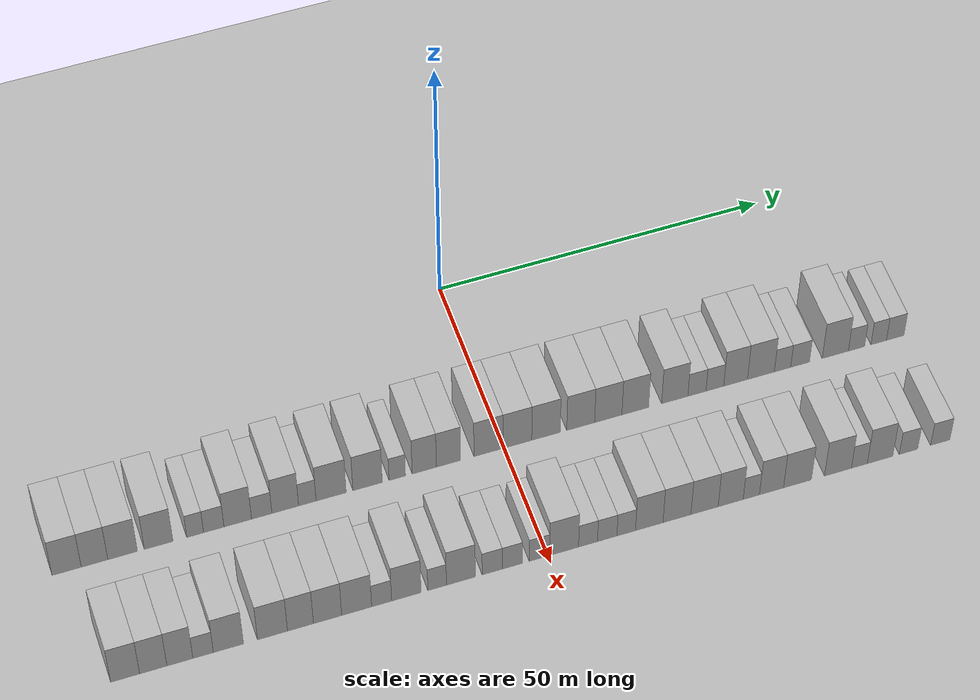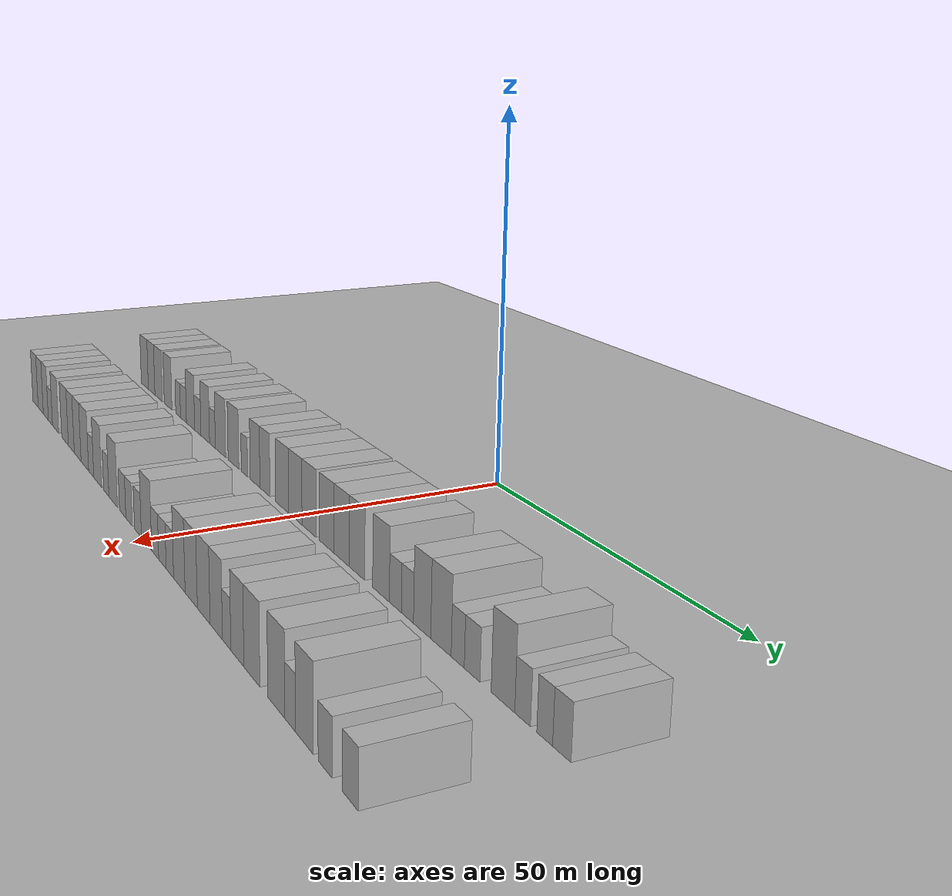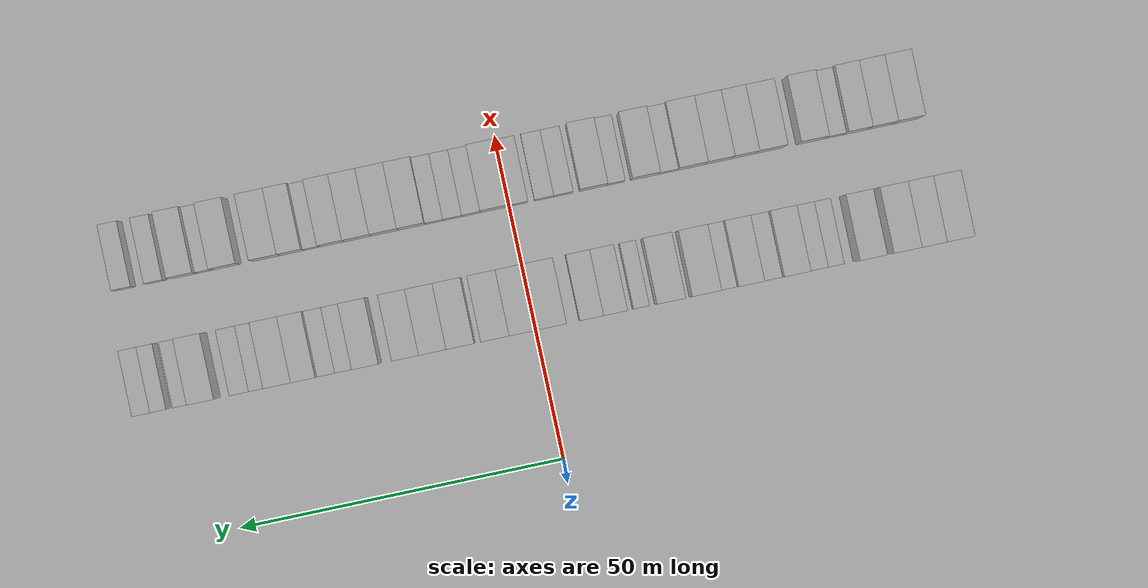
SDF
<sdf version="1.6">
 <world name="default">
  <include><name>ground_plane_1</name><uri>model://HANNAS_ground_plane</uri></include>
  <include>
   <name>ground_plane_2</name>
   <uri>model://HANNAS_ground_plane</uri>
   <pose>100 0 0  0 0 0</pose>
  </include>
  <model name="building_31">
   <static>1</static>
   <pose>25.0000 -64.3107 0 0.000000 0.000000 0.000000</pose>
   <link name="link">
    <pose>0 0 4.50 0 0 0</pose>
    <collision name="collision"><geometry><box><size>10.0000 4.1865 9.0000</size></box></geometry></collision>
    <visual name="visual">
     <cast_shadows>0</cast_shadows>
     <geometry><box><size>10.0000 4.1865 9.0000</size></box></geometry>
     <material>
      <script>
       <uri>model://HANNAS_wall/materials/scripts</uri>
       <uri>model://HANNAS_wall/materials/textures</uri>
       <name>vrc/HANNAS_wall</name>
      </script>
     </material>
    </visual>
   </link>
  </model>
  <model name="building_32">
   <static>1</static>
   <pose>25.0000 -60.3107 0 0.000000 0.000000 0.000000</pose>
   <link name="link">
    <pose>0 0 4.50 0 0 0</pose>
    <collision name="collision"><geometry><box><size>10.0000 3.8135 9.0000</size></box></geometry></collision>
    <visual name="visual">
     <cast_shadows>0</cast_shadows>
     <geometry><box><size>10.0000 3.8135 9.0000</size></box></geometry>
     <material>
      <script>
       <uri>model://HANNAS_wall/materials/scripts</uri>
       <uri>model://HANNAS_wall/materials/textures</uri>
       <name>vrc/HANNAS_wall</name>
      </script>
     </material>
    </visual>
   </link>
  </model>
  <model name="building_33">
   <static>1</static>
   <pose>25.0000 -56.2787 0 0.000000 0.000000 0.000000</pose>
   <link name="link">
    <pose>0 0 4.50 0 0 0</pose>
    <collision name="collision"><geometry><box><size>10.0000 4.2505 9.0000</size></box></geometry></collision>
    <visual name="visual">
     <cast_shadows>0</cast_shadows>
     <geometry><box><size>10.0000 4.2505 9.0000</size></box></geometry>
     <material>
      <script>
       <uri>model://HANNAS_wall/materials/scripts</uri>
       <uri>model://HANNAS_wall/materials/textures</uri>
       <name>vrc/HANNAS_wall</name>
      </script>
     </material>
    </visual>
   </link>
  </model>
  <model name="building_34">
   <static>1</static>
   <pose>25.0000 -51.0854 0 0.000000 0.000000 0.000000</pose>
   <link name="link">
    <pose>0 0 4.50 0 0 0</pose>
    <collision name="collision"><geometry><box><size>10.0000 4.1361 9.0000</size></box></geometry></collision>
    <visual name="visual">
     <cast_shadows>0</cast_shadows>
     <geometry><box><size>10.0000 4.1361 9.0000</size></box></geometry>
     <material>
      <script>
       <uri>model://HANNAS_wall/materials/scripts</uri>
       <uri>model://HANNAS_wall/materials/textures</uri>
       <name>vrc/HANNAS_wall</name>
      </script>
     </material>
    </visual>
   </link>
  </model>
  <model name="building_35">
   <static>1</static>
   <pose>25.0000 -45.7949 0 0.000000 0.000000 0.000000</pose>
   <link name="link">
    <pose>0 0 3.00 0 0 0</pose>
    <collision name="collision"><geometry><box><size>10.0000 2.4448 6.0000</size></box></geometry></collision>
    <visual name="visual">
     <cast_shadows>0</cast_shadows>
     <geometry><box><size>10.0000 2.4448 6.0000</size></box></geometry>
     <material>
      <script>
       <uri>model://HANNAS_wall/materials/scripts</uri>
       <uri>model://HANNAS_wall/materials/textures</uri>
       <name>vrc/HANNAS_wall</name>
      </script>
     </material>
    </visual>
   </link>
  </model>
  <model name="building_36">
   <static>1</static>
   <pose>25.0000 -43.0886 0 0.000000 0.000000 0.000000</pose>
   <link name="link">
    <pose>0 0 3.00 0 0 0</pose>
    <collision name="collision"><geometry><box><size>10.0000 2.9679 6.0000</size></box></geometry></collision>
    <visual name="visual">
     <cast_shadows>0</cast_shadows>
     <geometry><box><size>10.0000 2.9679 6.0000</size></box></geometry>
     <material>
      <script>
       <uri>model://HANNAS_wall/materials/scripts</uri>
       <uri>model://HANNAS_wall/materials/textures</uri>
       <name>vrc/HANNAS_wall</name>
      </script>
     </material>
    </visual>
   </link>
  </model>
  <model name="building_37">
   <static>1</static>
   <pose>25.0000 -39.5950 0 0.000000 0.000000 0.000000</pose>
   <link name="link">
    <pose>0 0 4.50 0 0 0</pose>
    <collision name="collision"><geometry><box><size>10.0000 4.0194 9.0000</size></box></geometry></collision>
    <visual name="visual">
     <cast_shadows>0</cast_shadows>
     <geometry><box><size>10.0000 4.0194 9.0000</size></box></geometry>
     <material>
      <script>
       <uri>model://HANNAS_wall/materials/scripts</uri>
       <uri>model://HANNAS_wall/materials/textures</uri>
       <name>vrc/HANNAS_wall</name>
      </script>
     </material>
    </visual>
   </link>
  </model>
  <model name="building_38">
   <static>1</static>
   <pose>25.0000 -36.0967 0 0.000000 0.000000 0.000000</pose>
   <link name="link">
    <pose>0 0 3.00 0 0 0</pose>
    <collision name="collision"><geometry><box><size>10.0000 2.9772 6.0000</size></box></geometry></collision>
    <visual name="visual">
     <cast_shadows>0</cast_shadows>
     <geometry><box><size>10.0000 2.9772 6.0000</size></box></geometry>
     <material>
      <script>
       <uri>model://HANNAS_wall/materials/scripts</uri>
       <uri>model://HANNAS_wall/materials/textures</uri>
       <name>vrc/HANNAS_wall</name>
      </script>
     </material>
    </visual>
   </link>
  </model>
  <model name="building_39">
   <static>1</static>
   <pose>25.0000 -32.6486 0 0.000000 0.000000 0.000000</pose>
   <link name="link">
    <pose>0 0 4.50 0 0 0</pose>
    <collision name="collision"><geometry><box><size>10.0000 3.9190 9.0000</size></box></geometry></collision>
    <visual name="visual">
     <cast_shadows>0</cast_shadows>
     <geometry><box><size>10.0000 3.9190 9.0000</size></box></geometry>
     <material>
      <script>
       <uri>model://HANNAS_wall/materials/scripts</uri>
       <uri>model://HANNAS_wall/materials/textures</uri>
       <name>vrc/HANNAS_wall</name>
      </script>
     </material>
    </visual>
   </link>
  </model>
  <model name="building_40">
   <static>1</static>
   <pose>25.0000 -29.4030 0 0.000000 0.000000 0.000000</pose>
   <link name="link">
    <pose>0 0 3.00 0 0 0</pose>
    <collision name="collision"><geometry><box><size>10.0000 2.5723 6.0000</size></box></geometry></collision>
    <visual name="visual">
     <cast_shadows>0</cast_shadows>
     <geometry><box><size>10.0000 2.5723 6.0000</size></box></geometry>
     <material>
      <script>
       <uri>model://HANNAS_wall/materials/scripts</uri>
       <uri>model://HANNAS_wall/materials/textures</uri>
       <name>vrc/HANNAS_wall</name>
      </script>
     </material>
    </visual>
   </link>
  </model>
  <model name="building_41">
   <static>1</static>
   <pose>25.0000 -25.9004 0 0.000000 0.000000 0.000000</pose>
   <link name="link">
    <pose>0 0 4.50 0 0 0</pose>
    <collision name="collision"><geometry><box><size>10.0000 4.4328 9.0000</size></box></geometry></collision>
    <visual name="visual">
     <cast_shadows>0</cast_shadows>
     <geometry><box><size>10.0000 4.4328 9.0000</size></box></geometry>
     <material>
      <script>
       <uri>model://HANNAS_wall/materials/scripts</uri>
       <uri>model://HANNAS_wall/materials/textures</uri>
       <name>vrc/HANNAS_wall</name>
      </script>
     </material>
    </visual>
   </link>
  </model>
  <model name="building_42">
   <static>1</static>
   <pose>25.0000 -20.5050 0 0.000000 0.000000 0.000000</pose>
   <link name="link">
    <pose>0 0 4.50 0 0 0</pose>
    <collision name="collision"><geometry><box><size>10.0000 4.3582 9.0000</size></box></geometry></collision>
    <visual name="visual">
     <cast_shadows>0</cast_shadows>
     <geometry><box><size>10.0000 4.3582 9.0000</size></box></geometry>
     <material>
      <script>
       <uri>model://HANNAS_wall/materials/scripts</uri>
       <uri>model://HANNAS_wall/materials/textures</uri>
       <name>vrc/HANNAS_wall</name>
      </script>
     </material>
    </visual>
   </link>
  </model>
  <model name="building_43">
   <static>1</static>
   <pose>25.0000 -16.1089 0 0.000000 0.000000 0.000000</pose>
   <link name="link">
    <pose>0 0 3.00 0 0 0</pose>
    <collision name="collision"><geometry><box><size>10.0000 2.4340 6.0000</size></box></geometry></collision>
    <visual name="visual">
     <cast_shadows>0</cast_shadows>
     <geometry><box><size>10.0000 2.4340 6.0000</size></box></geometry>
     <material>
      <script>
       <uri>model://HANNAS_wall/materials/scripts</uri>
       <uri>model://HANNAS_wall/materials/textures</uri>
       <name>vrc/HANNAS_wall</name>
      </script>
     </material>
    </visual>
   </link>
  </model>
  <model name="building_44">
   <static>1</static>
   <pose>25.0000 -12.0789 0 0.000000 0.000000 0.000000</pose>
   <link name="link">
    <pose>0 0 4.50 0 0 0</pose>
    <collision name="collision"><geometry><box><size>10.0000 3.6259 9.0000</size></box></geometry></collision>
    <visual name="visual">
     <cast_shadows>0</cast_shadows>
     <geometry><box><size>10.0000 3.6259 9.0000</size></box></geometry>
     <material>
      <script>
       <uri>model://HANNAS_wall/materials/scripts</uri>
       <uri>model://HANNAS_wall/materials/textures</uri>
       <name>vrc/HANNAS_wall</name>
      </script>
     </material>
    </visual>
   </link>
  </model>
  <model name="building_45">
   <static>1</static>
   <pose>25.0000 -8.4605 0 0.000000 0.000000 0.000000</pose>
   <link name="link">
    <pose>0 0 4.50 0 0 0</pose>
    <collision name="collision"><geometry><box><size>10.0000 3.6108 9.0000</size></box></geometry></collision>
    <visual name="visual">
     <cast_shadows>0</cast_shadows>
     <geometry><box><size>10.0000 3.6108 9.0000</size></box></geometry>
     <material>
      <script>
       <uri>model://HANNAS_wall/materials/scripts</uri>
       <uri>model://HANNAS_wall/materials/textures</uri>
       <name>vrc/HANNAS_wall</name>
      </script>
     </material>
    </visual>
   </link>
  </model>
  <model name="building_46">
   <static>1</static>
   <pose>25.0000 -2.4725 0 0.000000 0.000000 0.000000</pose>
   <link name="link">
    <pose>0 0 4.50 0 0 0</pose>
    <collision name="collision"><geometry><box><size>10.0000 4.3652 9.0000</size></box></geometry></collision>
    <visual name="visual">
     <cast_shadows>0</cast_shadows>
     <geometry><box><size>10.0000 4.3652 9.0000</size></box></geometry>
     <material>
      <script>
       <uri>model://HANNAS_wall/materials/scripts</uri>
       <uri>model://HANNAS_wall/materials/textures</uri>
       <name>vrc/HANNAS_wall</name>
      </script>
     </material>
    </visual>
   </link>
  </model>
  <model name="building_47">
   <static>1</static>
   <pose>25.0000 1.8716 0 0.000000 0.000000 0.000000</pose>
   <link name="link">
    <pose>0 0 4.50 0 0 0</pose>
    <collision name="collision"><geometry><box><size>10.0000 4.3229 9.0000</size></box></geometry></collision>
    <visual name="visual">
     <cast_shadows>0</cast_shadows>
     <geometry><box><size>10.0000 4.3229 9.0000</size></box></geometry>
     <material>
      <script>
       <uri>model://HANNAS_wall/materials/scripts</uri>
       <uri>model://HANNAS_wall/materials/textures</uri>
       <name>vrc/HANNAS_wall</name>
      </script>
     </material>
    </visual>
   </link>
  </model>
  <model name="building_48">
   <static>1</static>
   <pose>25.0000 6.1837 0 0.000000 0.000000 0.000000</pose>
   <link name="link">
    <pose>0 0 4.50 0 0 0</pose>
    <collision name="collision"><geometry><box><size>10.0000 4.3014 9.0000</size></box></geometry></collision>
    <visual name="visual">
     <cast_shadows>0</cast_shadows>
     <geometry><box><size>10.0000 4.3014 9.0000</size></box></geometry>
     <material>
      <script>
       <uri>model://HANNAS_wall/materials/scripts</uri>
       <uri>model://HANNAS_wall/materials/textures</uri>
       <name>vrc/HANNAS_wall</name>
      </script>
     </material>
    </visual>
   </link>
  </model>
  <model name="building_49">
   <static>1</static>
   <pose>25.0000 11.4500 0 0.000000 0.000000 0.000000</pose>
   <link name="link">
    <pose>0 0 4.50 0 0 0</pose>
    <collision name="collision"><geometry><box><size>10.0000 4.2313 9.0000</size></box></geometry></collision>
    <visual name="visual">
     <cast_shadows>0</cast_shadows>
     <geometry><box><size>10.0000 4.2313 9.0000</size></box></geometry>
     <material>
      <script>
       <uri>model://HANNAS_wall/materials/scripts</uri>
       <uri>model://HANNAS_wall/materials/textures</uri>
       <name>vrc/HANNAS_wall</name>
      </script>
     </material>
    </visual>
   </link>
  </model>
  <model name="building_50">
   <static>1</static>
   <pose>25.0000 15.6476 0 0.000000 0.000000 0.000000</pose>
   <link name="link">
    <pose>0 0 4.50 0 0 0</pose>
    <collision name="collision"><geometry><box><size>10.0000 4.1638 9.0000</size></box></geometry></collision>
    <visual name="visual">
     <cast_shadows>0</cast_shadows>
     <geometry><box><size>10.0000 4.1638 9.0000</size></box></geometry>
     <material>
      <script>
       <uri>model://HANNAS_wall/materials/scripts</uri>
       <uri>model://HANNAS_wall/materials/textures</uri>
       <name>vrc/HANNAS_wall</name>
      </script>
     </material>
    </visual>
   </link>
  </model>
  <model name="building_51">
   <static>1</static>
   <pose>25.0000 19.7668 0 0.000000 0.000000 0.000000</pose>
   <link name="link">
    <pose>0 0 4.50 0 0 0</pose>
    <collision name="collision"><geometry><box><size>10.0000 4.0746 9.0000</size></box></geometry></collision>
    <visual name="visual">
     <cast_shadows>0</cast_shadows>
     <geometry><box><size>10.0000 4.0746 9.0000</size></box></geometry>
     <material>
      <script>
       <uri>model://HANNAS_wall/materials/scripts</uri>
       <uri>model://HANNAS_wall/materials/textures</uri>
       <name>vrc/HANNAS_wall</name>
      </script>
     </material>
    </visual>
   </link>
  </model>
  <model name="building_52">
   <static>1</static>
   <pose>25.0000 25.8282 0 0.000000 0.000000 0.000000</pose>
   <link name="link">
    <pose>0 0 4.50 0 0 0</pose>
    <collision name="collision"><geometry><box><size>10.0000 4.0484 9.0000</size></box></geometry></collision>
    <visual name="visual">
     <cast_shadows>0</cast_shadows>
     <geometry><box><size>10.0000 4.0484 9.0000</size></box></geometry>
     <material>
      <script>
       <uri>model://HANNAS_wall/materials/scripts</uri>
       <uri>model://HANNAS_wall/materials/textures</uri>
       <name>vrc/HANNAS_wall</name>
      </script>
     </material>
    </visual>
   </link>
  </model>
  <model name="building_53">
   <static>1</static>
   <pose>25.0000 29.2500 0 0.000000 0.000000 0.000000</pose>
   <link name="link">
    <pose>0 0 3.00 0 0 0</pose>
    <collision name="collision"><geometry><box><size>10.0000 2.7951 6.0000</size></box></geometry></collision>
    <visual name="visual">
     <cast_shadows>0</cast_shadows>
     <geometry><box><size>10.0000 2.7951 6.0000</size></box></geometry>
     <material>
      <script>
       <uri>model://HANNAS_wall/materials/scripts</uri>
       <uri>model://HANNAS_wall/materials/textures</uri>
       <name>vrc/HANNAS_wall</name>
      </script>
     </material>
    </visual>
   </link>
  </model>
  <model name="building_54">
   <static>1</static>
   <pose>25.0000 32.0078 0 0.000000 0.000000 0.000000</pose>
   <link name="link">
    <pose>0 0 3.00 0 0 0</pose>
    <collision name="collision"><geometry><box><size>10.0000 2.7205 6.0000</size></box></geometry></collision>
    <visual name="visual">
     <cast_shadows>0</cast_shadows>
     <geometry><box><size>10.0000 2.7205 6.0000</size></box></geometry>
     <material>
      <script>
       <uri>model://HANNAS_wall/materials/scripts</uri>
       <uri>model://HANNAS_wall/materials/textures</uri>
       <name>vrc/HANNAS_wall</name>
      </script>
     </material>
    </visual>
   </link>
  </model>
  <model name="building_55">
   <static>1</static>
   <pose>25.0000 35.2162 0 0.000000 0.000000 0.000000</pose>
   <link name="link">
    <pose>0 0 4.50 0 0 0</pose>
    <collision name="collision"><geometry><box><size>10.0000 3.6962 9.0000</size></box></geometry></collision>
    <visual name="visual">
     <cast_shadows>0</cast_shadows>
     <geometry><box><size>10.0000 3.6962 9.0000</size></box></geometry>
     <material>
      <script>
       <uri>model://HANNAS_wall/materials/scripts</uri>
       <uri>model://HANNAS_wall/materials/textures</uri>
       <name>vrc/HANNAS_wall</name>
      </script>
     </material>
    </visual>
   </link>
  </model>
  <model name="building_56">
   <static>1</static>
   <pose>25.0000 39.1482 0 0.000000 0.000000 0.000000</pose>
   <link name="link">
    <pose>0 0 4.50 0 0 0</pose>
    <collision name="collision"><geometry><box><size>10.0000 4.1677 9.0000</size></box></geometry></collision>
    <visual name="visual">
     <cast_shadows>0</cast_shadows>
     <geometry><box><size>10.0000 4.1677 9.0000</size></box></geometry>
     <material>
      <script>
       <uri>model://HANNAS_wall/materials/scripts</uri>
       <uri>model://HANNAS_wall/materials/textures</uri>
       <name>vrc/HANNAS_wall</name>
      </script>
     </material>
    </visual>
   </link>
  </model>
  <model name="building_57">
   <static>1</static>
   <pose>25.0000 42.5010 0 0.000000 0.000000 0.000000</pose>
   <link name="link">
    <pose>0 0 3.00 0 0 0</pose>
    <collision name="collision"><geometry><box><size>10.0000 2.5380 6.0000</size></box></geometry></collision>
    <visual name="visual">
     <cast_shadows>0</cast_shadows>
     <geometry><box><size>10.0000 2.5380 6.0000</size></box></geometry>
     <material>
      <script>
       <uri>model://HANNAS_wall/materials/scripts</uri>
       <uri>model://HANNAS_wall/materials/textures</uri>
       <name>vrc/HANNAS_wall</name>
      </script>
     </material>
    </visual>
   </link>
  </model>
  <model name="building_58">
   <static>1</static>
   <pose>25.0000 45.2369 0 0.000000 0.000000 0.000000</pose>
   <link name="link">
    <pose>0 0 3.00 0 0 0</pose>
    <collision name="collision"><geometry><box><size>10.0000 2.9338 6.0000</size></box></geometry></collision>
    <visual name="visual">
     <cast_shadows>0</cast_shadows>
     <geometry><box><size>10.0000 2.9338 6.0000</size></box></geometry>
     <material>
      <script>
       <uri>model://HANNAS_wall/materials/scripts</uri>
       <uri>model://HANNAS_wall/materials/textures</uri>
       <name>vrc/HANNAS_wall</name>
      </script>
     </material>
    </visual>
   </link>
  </model>
  <model name="building_59">
   <static>1</static>
   <pose>25.0000 50.7413 0 0.000000 0.000000 0.000000</pose>
   <link name="link">
    <pose>0 0 4.50 0 0 0</pose>
    <collision name="collision"><geometry><box><size>10.0000 4.0751 9.0000</size></box></geometry></collision>
    <visual name="visual">
     <cast_shadows>0</cast_shadows>
     <geometry><box><size>10.0000 4.0751 9.0000</size></box></geometry>
     <material>
      <script>
       <uri>model://HANNAS_wall/materials/scripts</uri>
       <uri>model://HANNAS_wall/materials/textures</uri>
       <name>vrc/HANNAS_wall</name>
      </script>
     </material>
    </visual>
   </link>
  </model>
  <model name="building_60">
   <static>1</static>
   <pose>25.0000 54.0608 0 0.000000 0.000000 0.000000</pose>
   <link name="link">
    <pose>0 0 3.00 0 0 0</pose>
    <collision name="collision"><geometry><box><size>10.0000 2.5638 6.0000</size></box></geometry></collision>
    <visual name="visual">
     <cast_shadows>0</cast_shadows>
     <geometry><box><size>10.0000 2.5638 6.0000</size></box></geometry>
     <material>
      <script>
       <uri>model://HANNAS_wall/materials/scripts</uri>
       <uri>model://HANNAS_wall/materials/textures</uri>
       <name>vrc/HANNAS_wall</name>
      </script>
     </material>
    </visual>
   </link>
  </model>
  <model name="building_61">
   <static>1</static>
   <pose>25.0000 57.5639 0 0.000000 0.000000 0.000000</pose>
   <link name="link">
    <pose>0 0 3.00 0 0 0</pose>
    <collision name="collision"><geometry><box><size>10.0000 2.4423 6.0000</size></box></geometry></collision>
    <visual name="visual">
     <cast_shadows>0</cast_shadows>
     <geometry><box><size>10.0000 2.4423 6.0000</size></box></geometry>
     <material>
      <script>
       <uri>model://HANNAS_wall/materials/scripts</uri>
       <uri>model://HANNAS_wall/materials/textures</uri>
       <name>vrc/HANNAS_wall</name>
      </script>
     </material>
    </visual>
   </link>
  </model>
  <model name="building_62">
   <static>1</static>
   <pose>25.0000 60.1617 0 0.000000 0.000000 0.000000</pose>
   <link name="link">
    <pose>0 0 3.00 0 0 0</pose>
    <collision name="collision"><geometry><box><size>10.0000 2.7533 6.0000</size></box></geometry></collision>
    <visual name="visual">
     <cast_shadows>0</cast_shadows>
     <geometry><box><size>10.0000 2.7533 6.0000</size></box></geometry>
     <material>
      <script>
       <uri>model://HANNAS_wall/materials/scripts</uri>
       <uri>model://HANNAS_wall/materials/textures</uri>
       <name>vrc/HANNAS_wall</name>
      </script>
     </material>
    </visual>
   </link>
  </model>
  <model name="building_134">
   <static>1</static>
   <pose>44.0000 -60.9694 0 0.000000 0.000000 0.000000</pose>
   <link name="link">
    <pose>0 0 4.50 0 0 0</pose>
    <collision name="collision"><geometry><box><size>10.0000 4.0788 9.0000</size></box></geometry></collision>
    <visual name="visual">
     <cast_shadows>0</cast_shadows>
     <geometry><box><size>10.0000 4.0788 9.0000</size></box></geometry>
     <material>
      <script>
       <uri>model://HANNAS_wall/materials/scripts</uri>
       <uri>model://HANNAS_wall/materials/textures</uri>
       <name>vrc/HANNAS_wall</name>
      </script>
     </material>
    </visual>
   </link>
  </model>
  <model name="building_135">
   <static>1</static>
   <pose>44.0000 -57.0082 0 0.000000 0.000000 0.000000</pose>
   <link name="link">
    <pose>0 0 4.50 0 0 0</pose>
    <collision name="collision"><geometry><box><size>10.0000 3.8436 9.0000</size></box></geometry></collision>
    <visual name="visual">
     <cast_shadows>0</cast_shadows>
     <geometry><box><size>10.0000 3.8436 9.0000</size></box></geometry>
     <material>
      <script>
       <uri>model://HANNAS_wall/materials/scripts</uri>
       <uri>model://HANNAS_wall/materials/textures</uri>
       <name>vrc/HANNAS_wall</name>
      </script>
     </material>
    </visual>
   </link>
  </model>
  <model name="building_136">
   <static>1</static>
   <pose>44.0000 -53.2494 0 0.000000 0.000000 0.000000</pose>
   <link name="link">
    <pose>0 0 4.50 0 0 0</pose>
    <collision name="collision"><geometry><box><size>10.0000 3.6739 9.0000</size></box></geometry></collision>
    <visual name="visual">
     <cast_shadows>0</cast_shadows>
     <geometry><box><size>10.0000 3.6739 9.0000</size></box></geometry>
     <material>
      <script>
       <uri>model://HANNAS_wall/materials/scripts</uri>
       <uri>model://HANNAS_wall/materials/textures</uri>
       <name>vrc/HANNAS_wall</name>
      </script>
     </material>
    </visual>
   </link>
  </model>
  <model name="building_137">
   <static>1</static>
   <pose>44.0000 -49.9611 0 0.000000 0.000000 0.000000</pose>
   <link name="link">
    <pose>0 0 3.00 0 0 0</pose>
    <collision name="collision"><geometry><box><size>10.0000 2.9028 6.0000</size></box></geometry></collision>
    <visual name="visual">
     <cast_shadows>0</cast_shadows>
     <geometry><box><size>10.0000 2.9028 6.0000</size></box></geometry>
     <material>
      <script>
       <uri>model://HANNAS_wall/materials/scripts</uri>
       <uri>model://HANNAS_wall/materials/textures</uri>
       <name>vrc/HANNAS_wall</name>
      </script>
     </material>
    </visual>
   </link>
  </model>
  <model name="building_138">
   <static>1</static>
   <pose>44.0000 -46.3736 0 0.000000 0.000000 0.000000</pose>
   <link name="link">
    <pose>0 0 4.50 0 0 0</pose>
    <collision name="collision"><geometry><box><size>10.0000 4.2721 9.0000</size></box></geometry></collision>
    <visual name="visual">
     <cast_shadows>0</cast_shadows>
     <geometry><box><size>10.0000 4.2721 9.0000</size></box></geometry>
     <material>
      <script>
       <uri>model://HANNAS_wall/materials/scripts</uri>
       <uri>model://HANNAS_wall/materials/textures</uri>
       <name>vrc/HANNAS_wall</name>
      </script>
     </material>
    </visual>
   </link>
  </model>
  <model name="building_139">
   <static>1</static>
   <pose>44.0000 -40.0922 0 0.000000 0.000000 0.000000</pose>
   <link name="link">
    <pose>0 0 4.50 0 0 0</pose>
    <collision name="collision"><geometry><box><size>10.0000 4.2907 9.0000</size></box></geometry></collision>
    <visual name="visual">
     <cast_shadows>0</cast_shadows>
     <geometry><box><size>10.0000 4.2907 9.0000</size></box></geometry>
     <material>
      <script>
       <uri>model://HANNAS_wall/materials/scripts</uri>
       <uri>model://HANNAS_wall/materials/textures</uri>
       <name>vrc/HANNAS_wall</name>
      </script>
     </material>
    </visual>
   </link>
  </model>
  <model name="building_140">
   <static>1</static>
   <pose>44.0000 -36.0875 0 0.000000 0.000000 0.000000</pose>
   <link name="link">
    <pose>0 0 4.50 0 0 0</pose>
    <collision name="collision"><geometry><box><size>10.0000 3.7188 9.0000</size></box></geometry></collision>
    <visual name="visual">
     <cast_shadows>0</cast_shadows>
     <geometry><box><size>10.0000 3.7188 9.0000</size></box></geometry>
     <material>
      <script>
       <uri>model://HANNAS_wall/materials/scripts</uri>
       <uri>model://HANNAS_wall/materials/textures</uri>
       <name>vrc/HANNAS_wall</name>
      </script>
     </material>
    </visual>
   </link>
  </model>
  <model name="building_141">
   <static>1</static>
   <pose>44.0000 -32.2013 0 0.000000 0.000000 0.000000</pose>
   <link name="link">
    <pose>0 0 4.50 0 0 0</pose>
    <collision name="collision"><geometry><box><size>10.0000 4.0536 9.0000</size></box></geometry></collision>
    <visual name="visual">
     <cast_shadows>0</cast_shadows>
     <geometry><box><size>10.0000 4.0536 9.0000</size></box></geometry>
     <material>
      <script>
       <uri>model://HANNAS_wall/materials/scripts</uri>
       <uri>model://HANNAS_wall/materials/textures</uri>
       <name>vrc/HANNAS_wall</name>
      </script>
     </material>
    </visual>
   </link>
  </model>
  <model name="building_142">
   <static>1</static>
   <pose>44.0000 -28.0070 0 0.000000 0.000000 0.000000</pose>
   <link name="link">
    <pose>0 0 4.50 0 0 0</pose>
    <collision name="collision"><geometry><box><size>10.0000 4.3352 9.0000</size></box></geometry></collision>
    <visual name="visual">
     <cast_shadows>0</cast_shadows>
     <geometry><box><size>10.0000 4.3352 9.0000</size></box></geometry>
     <material>
      <script>
       <uri>model://HANNAS_wall/materials/scripts</uri>
       <uri>model://HANNAS_wall/materials/textures</uri>
       <name>vrc/HANNAS_wall</name>
      </script>
     </material>
    </visual>
   </link>
  </model>
  <model name="building_143">
   <static>1</static>
   <pose>44.0000 -24.4010 0 0.000000 0.000000 0.000000</pose>
   <link name="link">
    <pose>0 0 3.00 0 0 0</pose>
    <collision name="collision"><geometry><box><size>10.0000 2.8768 6.0000</size></box></geometry></collision>
    <visual name="visual">
     <cast_shadows>0</cast_shadows>
     <geometry><box><size>10.0000 2.8768 6.0000</size></box></geometry>
     <material>
      <script>
       <uri>model://HANNAS_wall/materials/scripts</uri>
       <uri>model://HANNAS_wall/materials/textures</uri>
       <name>vrc/HANNAS_wall</name>
      </script>
     </material>
    </visual>
   </link>
  </model>
  <model name="building_144">
   <static>1</static>
   <pose>44.0000 -20.8320 0 0.000000 0.000000 0.000000</pose>
   <link name="link">
    <pose>0 0 4.50 0 0 0</pose>
    <collision name="collision"><geometry><box><size>10.0000 4.2611 9.0000</size></box></geometry></collision>
    <visual name="visual">
     <cast_shadows>0</cast_shadows>
     <geometry><box><size>10.0000 4.2611 9.0000</size></box></geometry>
     <material>
      <script>
       <uri>model://HANNAS_wall/materials/scripts</uri>
       <uri>model://HANNAS_wall/materials/textures</uri>
       <name>vrc/HANNAS_wall</name>
      </script>
     </material>
    </visual>
   </link>
  </model>
  <model name="building_145">
   <static>1</static>
   <pose>44.0000 -16.3486 0 0.000000 0.000000 0.000000</pose>
   <link name="link">
    <pose>0 0 3.00 0 0 0</pose>
    <collision name="collision"><geometry><box><size>10.0000 2.7057 6.0000</size></box></geometry></collision>
    <visual name="visual">
     <cast_shadows>0</cast_shadows>
     <geometry><box><size>10.0000 2.7057 6.0000</size></box></geometry>
     <material>
      <script>
       <uri>model://HANNAS_wall/materials/scripts</uri>
       <uri>model://HANNAS_wall/materials/textures</uri>
       <name>vrc/HANNAS_wall</name>
      </script>
     </material>
    </visual>
   </link>
  </model>
  <model name="building_146">
   <static>1</static>
   <pose>44.0000 -12.8896 0 0.000000 0.000000 0.000000</pose>
   <link name="link">
    <pose>0 0 4.50 0 0 0</pose>
    <collision name="collision"><geometry><box><size>10.0000 4.2124 9.0000</size></box></geometry></collision>
    <visual name="visual">
     <cast_shadows>0</cast_shadows>
     <geometry><box><size>10.0000 4.2124 9.0000</size></box></geometry>
     <material>
      <script>
       <uri>model://HANNAS_wall/materials/scripts</uri>
       <uri>model://HANNAS_wall/materials/textures</uri>
       <name>vrc/HANNAS_wall</name>
      </script>
     </material>
    </visual>
   </link>
  </model>
  <model name="building_147">
   <static>1</static>
   <pose>44.0000 -8.3061 0 0.000000 0.000000 0.000000</pose>
   <link name="link">
    <pose>0 0 3.00 0 0 0</pose>
    <collision name="collision"><geometry><box><size>10.0000 2.9546 6.0000</size></box></geometry></collision>
    <visual name="visual">
     <cast_shadows>0</cast_shadows>
     <geometry><box><size>10.0000 2.9546 6.0000</size></box></geometry>
     <material>
      <script>
       <uri>model://HANNAS_wall/materials/scripts</uri>
       <uri>model://HANNAS_wall/materials/textures</uri>
       <name>vrc/HANNAS_wall</name>
      </script>
     </material>
    </visual>
   </link>
  </model>
  <model name="building_148">
   <static>1</static>
   <pose>44.0000 -5.3500 0 0.000000 0.000000 0.000000</pose>
   <link name="link">
    <pose>0 0 3.00 0 0 0</pose>
    <collision name="collision"><geometry><box><size>10.0000 2.9575 6.0000</size></box></geometry></collision>
    <visual name="visual">
     <cast_shadows>0</cast_shadows>
     <geometry><box><size>10.0000 2.9575 6.0000</size></box></geometry>
     <material>
      <script>
       <uri>model://HANNAS_wall/materials/scripts</uri>
       <uri>model://HANNAS_wall/materials/textures</uri>
       <name>vrc/HANNAS_wall</name>
      </script>
     </material>
    </visual>
   </link>
  </model>
  <model name="building_149">
   <static>1</static>
   <pose>44.0000 -1.3785 0 0.000000 0.000000 0.000000</pose>
   <link name="link">
    <pose>0 0 3.00 0 0 0</pose>
    <collision name="collision"><geometry><box><size>10.0000 2.9857 6.0000</size></box></geometry></collision>
    <visual name="visual">
     <cast_shadows>0</cast_shadows>
     <geometry><box><size>10.0000 2.9857 6.0000</size></box></geometry>
     <material>
      <script>
       <uri>model://HANNAS_wall/materials/scripts</uri>
       <uri>model://HANNAS_wall/materials/textures</uri>
       <name>vrc/HANNAS_wall</name>
      </script>
     </material>
    </visual>
   </link>
  </model>
  <model name="building_150">
   <static>1</static>
   <pose>44.0000 2.2615 0 0.000000 0.000000 0.000000</pose>
   <link name="link">
    <pose>0 0 4.50 0 0 0</pose>
    <collision name="collision"><geometry><box><size>10.0000 4.2942 9.0000</size></box></geometry></collision>
    <visual name="visual">
     <cast_shadows>0</cast_shadows>
     <geometry><box><size>10.0000 4.2942 9.0000</size></box></geometry>
     <material>
      <script>
       <uri>model://HANNAS_wall/materials/scripts</uri>
       <uri>model://HANNAS_wall/materials/textures</uri>
       <name>vrc/HANNAS_wall</name>
      </script>
     </material>
    </visual>
   </link>
  </model>
  <model name="building_151">
   <static>1</static>
   <pose>44.0000 5.8184 0 0.000000 0.000000 0.000000</pose>
   <link name="link">
    <pose>0 0 3.00 0 0 0</pose>
    <collision name="collision"><geometry><box><size>10.0000 2.8196 6.0000</size></box></geometry></collision>
    <visual name="visual">
     <cast_shadows>0</cast_shadows>
     <geometry><box><size>10.0000 2.8196 6.0000</size></box></geometry>
     <material>
      <script>
       <uri>model://HANNAS_wall/materials/scripts</uri>
       <uri>model://HANNAS_wall/materials/textures</uri>
       <name>vrc/HANNAS_wall</name>
      </script>
     </material>
    </visual>
   </link>
  </model>
  <model name="building_152">
   <static>1</static>
   <pose>44.0000 8.6654 0 0.000000 0.000000 0.000000</pose>
   <link name="link">
    <pose>0 0 3.00 0 0 0</pose>
    <collision name="collision"><geometry><box><size>10.0000 2.8744 6.0000</size></box></geometry></collision>
    <visual name="visual">
     <cast_shadows>0</cast_shadows>
     <geometry><box><size>10.0000 2.8744 6.0000</size></box></geometry>
     <material>
      <script>
       <uri>model://HANNAS_wall/materials/scripts</uri>
       <uri>model://HANNAS_wall/materials/textures</uri>
       <name>vrc/HANNAS_wall</name>
      </script>
     </material>
    </visual>
   </link>
  </model>
  <model name="building_153">
   <static>1</static>
   <pose>44.0000 11.4884 0 0.000000 0.000000 0.000000</pose>
   <link name="link">
    <pose>0 0 3.00 0 0 0</pose>
    <collision name="collision"><geometry><box><size>10.0000 2.7717 6.0000</size></box></geometry></collision>
    <visual name="visual">
     <cast_shadows>0</cast_shadows>
     <geometry><box><size>10.0000 2.7717 6.0000</size></box></geometry>
     <material>
      <script>
       <uri>model://HANNAS_wall/materials/scripts</uri>
       <uri>model://HANNAS_wall/materials/textures</uri>
       <name>vrc/HANNAS_wall</name>
      </script>
     </material>
    </visual>
   </link>
  </model>
  <model name="building_154">
   <static>1</static>
   <pose>44.0000 14.9326 0 0.000000 0.000000 0.000000</pose>
   <link name="link">
    <pose>0 0 4.50 0 0 0</pose>
    <collision name="collision"><geometry><box><size>10.0000 4.1168 9.0000</size></box></geometry></collision>
    <visual name="visual">
     <cast_shadows>0</cast_shadows>
     <geometry><box><size>10.0000 4.1168 9.0000</size></box></geometry>
     <material>
      <script>
       <uri>model://HANNAS_wall/materials/scripts</uri>
       <uri>model://HANNAS_wall/materials/textures</uri>
       <name>vrc/HANNAS_wall</name>
      </script>
     </material>
    </visual>
   </link>
  </model>
  <model name="building_155">
   <static>1</static>
   <pose>44.0000 19.0805 0 0.000000 0.000000 0.000000</pose>
   <link name="link">
    <pose>0 0 4.50 0 0 0</pose>
    <collision name="collision"><geometry><box><size>10.0000 4.1790 9.0000</size></box></geometry></collision>
    <visual name="visual">
     <cast_shadows>0</cast_shadows>
     <geometry><box><size>10.0000 4.1790 9.0000</size></box></geometry>
     <material>
      <script>
       <uri>model://HANNAS_wall/materials/scripts</uri>
       <uri>model://HANNAS_wall/materials/textures</uri>
       <name>vrc/HANNAS_wall</name>
      </script>
     </material>
    </visual>
   </link>
  </model>
  <model name="building_156">
   <static>1</static>
   <pose>44.0000 23.2213 0 0.000000 0.000000 0.000000</pose>
   <link name="link">
    <pose>0 0 4.50 0 0 0</pose>
    <collision name="collision"><geometry><box><size>10.0000 4.1025 9.0000</size></box></geometry></collision>
    <visual name="visual">
     <cast_shadows>0</cast_shadows>
     <geometry><box><size>10.0000 4.1025 9.0000</size></box></geometry>
     <material>
      <script>
       <uri>model://HANNAS_wall/materials/scripts</uri>
       <uri>model://HANNAS_wall/materials/textures</uri>
       <name>vrc/HANNAS_wall</name>
      </script>
     </material>
    </visual>
   </link>
  </model>
  <model name="building_157">
   <static>1</static>
   <pose>44.0000 27.1616 0 0.000000 0.000000 0.000000</pose>
   <link name="link">
    <pose>0 0 4.50 0 0 0</pose>
    <collision name="collision"><geometry><box><size>10.0000 3.7783 9.0000</size></box></geometry></collision>
    <visual name="visual">
     <cast_shadows>0</cast_shadows>
     <geometry><box><size>10.0000 3.7783 9.0000</size></box></geometry>
     <material>
      <script>
       <uri>model://HANNAS_wall/materials/scripts</uri>
       <uri>model://HANNAS_wall/materials/textures</uri>
       <name>vrc/HANNAS_wall</name>
      </script>
     </material>
    </visual>
   </link>
  </model>
  <model name="building_158">
   <static>1</static>
   <pose>44.0000 30.2776 0 0.000000 0.000000 0.000000</pose>
   <link name="link">
    <pose>0 0 3.00 0 0 0</pose>
    <collision name="collision"><geometry><box><size>10.0000 2.4537 6.0000</size></box></geometry></collision>
    <visual name="visual">
     <cast_shadows>0</cast_shadows>
     <geometry><box><size>10.0000 2.4537 6.0000</size></box></geometry>
     <material>
      <script>
       <uri>model://HANNAS_wall/materials/scripts</uri>
       <uri>model://HANNAS_wall/materials/textures</uri>
       <name>vrc/HANNAS_wall</name>
      </script>
     </material>
    </visual>
   </link>
  </model>
  <model name="building_159">
   <static>1</static>
   <pose>44.0000 33.3311 0 0.000000 0.000000 0.000000</pose>
   <link name="link">
    <pose>0 0 4.50 0 0 0</pose>
    <collision name="collision"><geometry><box><size>10.0000 3.6533 9.0000</size></box></geometry></collision>
    <visual name="visual">
     <cast_shadows>0</cast_shadows>
     <geometry><box><size>10.0000 3.6533 9.0000</size></box></geometry>
     <material>
      <script>
       <uri>model://HANNAS_wall/materials/scripts</uri>
       <uri>model://HANNAS_wall/materials/textures</uri>
       <name>vrc/HANNAS_wall</name>
      </script>
     </material>
    </visual>
   </link>
  </model>
  <model name="building_160">
   <static>1</static>
   <pose>44.0000 37.2758 0 0.000000 0.000000 0.000000</pose>
   <link name="link">
    <pose>0 0 4.50 0 0 0</pose>
    <collision name="collision"><geometry><box><size>10.0000 4.2360 9.0000</size></box></geometry></collision>
    <visual name="visual">
     <cast_shadows>0</cast_shadows>
     <geometry><box><size>10.0000 4.2360 9.0000</size></box></geometry>
     <material>
      <script>
       <uri>model://HANNAS_wall/materials/scripts</uri>
       <uri>model://HANNAS_wall/materials/textures</uri>
       <name>vrc/HANNAS_wall</name>
      </script>
     </material>
    </visual>
   </link>
  </model>
  <model name="building_161">
   <static>1</static>
   <pose>44.0000 43.4518 0 0.000000 0.000000 0.000000</pose>
   <link name="link">
    <pose>0 0 4.50 0 0 0</pose>
    <collision name="collision"><geometry><box><size>10.0000 4.1161 9.0000</size></box></geometry></collision>
    <visual name="visual">
     <cast_shadows>0</cast_shadows>
     <geometry><box><size>10.0000 4.1161 9.0000</size></box></geometry>
     <material>
      <script>
       <uri>model://HANNAS_wall/materials/scripts</uri>
       <uri>model://HANNAS_wall/materials/textures</uri>
       <name>vrc/HANNAS_wall</name>
      </script>
     </material>
    </visual>
   </link>
  </model>
  <model name="building_162">
   <static>1</static>
   <pose>44.0000 46.7225 0 0.000000 0.000000 0.000000</pose>
   <link name="link">
    <pose>0 0 3.00 0 0 0</pose>
    <collision name="collision"><geometry><box><size>10.0000 2.4254 6.0000</size></box></geometry></collision>
    <visual name="visual">
     <cast_shadows>0</cast_shadows>
     <geometry><box><size>10.0000 2.4254 6.0000</size></box></geometry>
     <material>
      <script>
       <uri>model://HANNAS_wall/materials/scripts</uri>
       <uri>model://HANNAS_wall/materials/textures</uri>
       <name>vrc/HANNAS_wall</name>
      </script>
     </material>
    </visual>
   </link>
  </model>
  <model name="building_163">
   <static>1</static>
   <pose>44.0000 49.8952 0 0.000000 0.000000 0.000000</pose>
   <link name="link">
    <pose>0 0 4.50 0 0 0</pose>
    <collision name="collision"><geometry><box><size>10.0000 3.9199 9.0000</size></box></geometry></collision>
    <visual name="visual">
     <cast_shadows>0</cast_shadows>
     <geometry><box><size>10.0000 3.9199 9.0000</size></box></geometry>
     <material>
      <script>
       <uri>model://HANNAS_wall/materials/scripts</uri>
       <uri>model://HANNAS_wall/materials/textures</uri>
       <name>vrc/HANNAS_wall</name>
      </script>
     </material>
    </visual>
   </link>
  </model>
  <model name="building_164">
   <static>1</static>
   <pose>44.0000 54.2731 0 0.000000 0.000000 0.000000</pose>
   <link name="link">
    <pose>0 0 3.00 0 0 0</pose>
    <collision name="collision"><geometry><box><size>10.0000 2.8358 6.0000</size></box></geometry></collision>
    <visual name="visual">
     <cast_shadows>0</cast_shadows>
     <geometry><box><size>10.0000 2.8358 6.0000</size></box></geometry>
     <material>
      <script>
       <uri>model://HANNAS_wall/materials/scripts</uri>
       <uri>model://HANNAS_wall/materials/textures</uri>
       <name>vrc/HANNAS_wall</name>
      </script>
     </material>
    </visual>
   </link>
  </model>
  <model name="building_165">
   <static>1</static>
   <pose>44.0000 59.1780 0 0.000000 0.000000 0.000000</pose>
   <link name="link">
    <pose>0 0 3.00 0 0 0</pose>
    <collision name="collision"><geometry><box><size>10.0000 2.9740 6.0000</size></box></geometry></collision>
    <visual name="visual">
     <cast_shadows>0</cast_shadows>
     <geometry><box><size>10.0000 2.9740 6.0000</size></box></geometry>
     <material>
      <script>
       <uri>model://HANNAS_wall/materials/scripts</uri>
       <uri>model://HANNAS_wall/materials/textures</uri>
       <name>vrc/HANNAS_wall</name>
      </script>
     </material>
    </visual>
   </link>
  </model>
 </world>
</sdf>
